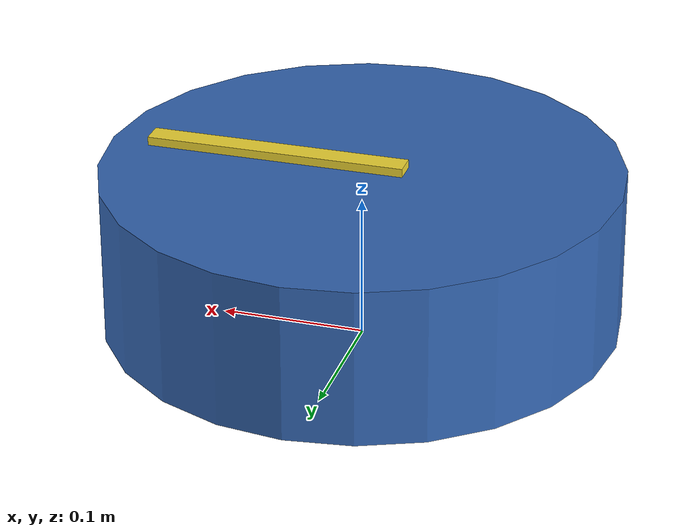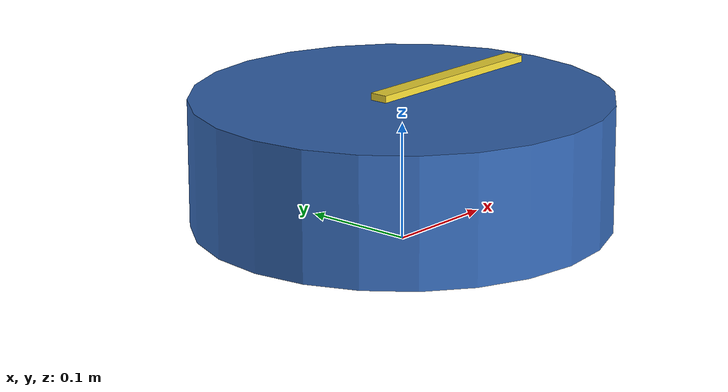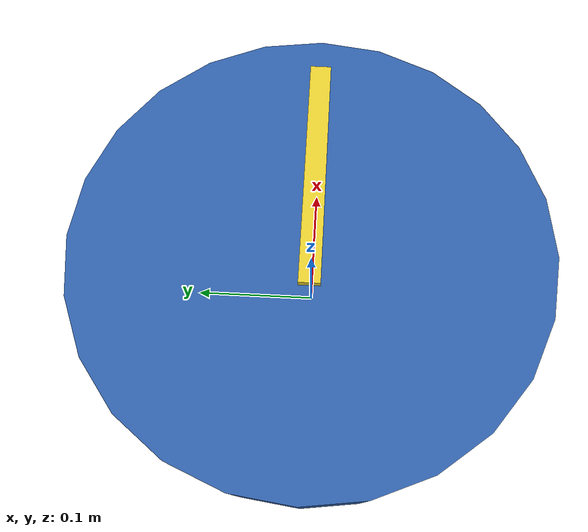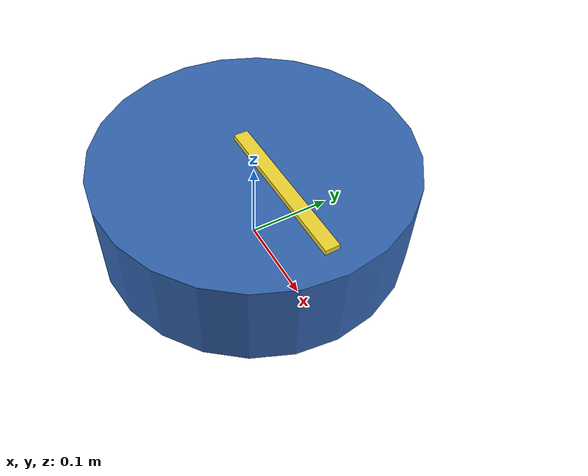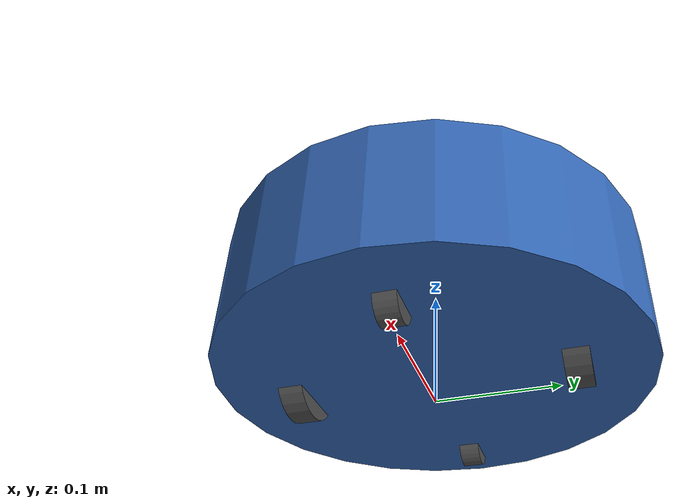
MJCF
<mujoco model="turtlebot2_kobuki">
  <compiler angle="radian"/>

  <asset>
    <material name="grey" rgba="0.3 0.3 0.3 1"/>
    <material name="body_blue" rgba="0.2 0.4 0.7 1"/>
    <material name="arrow_yellow" rgba="0.95 0.85 0.2 1"/>
  </asset>

  <default>
    <!-- Kobuki wheel motor -->
    <default class="wheel">
      <joint limited="false" frictionloss="0" armature="0.01"/>
      <!-- max wheel angular vel: 0.7 m/s / 0.035 m = 20 rad/s -->
      <!-- kv=1.0 + forcerange: ideal velocity controller with 1.0 Nm torque cap (matches Gazebo) -->
      <velocity kv="1.0" ctrlrange="-20 20" ctrllimited="true" forcerange="-1 1"/>
      <default class="wheel_left">
        <joint axis="0 0 1"/>
      </default>
      <default class="wheel_right">
        <joint axis="0 0 1"/>
      </default>
    </default>
  </default>

  <worldbody>
    <body name="base_link" pos="0 0 0.0102">
      <!-- URDF: mass=2.4, COM=(0.01, 0, 0), ixx=iyy=0.019995, izz=0.03675 -->
      <inertial pos="0.01 0 0" mass="6.1" diaginertia="0.05082 0.05082 0.09341"/>
      <joint type="free" name="base_joint"/>

      <!-- Visual body cylinder (matches collision shape, visual only) -->
      <geom name="body_cylinder" type="cylinder" size="0.178 0.05469"
        pos="0 0 0.05949" material="body_blue"
        contype="0" conaffinity="0" density="0" group="2"/>
      <!-- Collision cylinder: URDF r=0.178, length=0.10938 (half=0.05469), origin z=0.05949 -->
      <geom name="body_collision" type="cylinder" size="0.178 0.05469"
        pos="0 0 0.05949" group="3"/>

      <!-- Heading line on top of the cylinder for visual reference -->
      <geom name="heading_line" type="box" size="0.09 0.008 0.003"
        pos="0.06 0 0.118" material="arrow_yellow"
        contype="0" conaffinity="0" density="0" group="2"/>

      <!-- Front caster: URDF origin=(0.115, 0, 0.007), cylinder r=0.017 half-l=0.0088, rotated -pi/2 about X -->
      <geom name="caster_front" type="cylinder" size="0.017 0.0088"
        pos="0.115 0 0.007" quat="0.707107 -0.707107 0 0"
        material="grey" friction="0.0001 0.0001 0.0001"
        solref="0.02 1" solimp="0.95 0.99 0.001" condim="1"/>
      <!-- Back caster: URDF origin=(-0.135, 0, 0.009), same geometry -->
      <geom name="caster_back" type="cylinder" size="0.017 0.0088"
        pos="-0.135 0 0.009" quat="0.707107 -0.707107 0 0"
        material="grey" friction="0.0001 0.0001 0.0001"
        solref="0.02 1" solimp="0.95 0.99 0.001" condim="1"/>

      <!-- Left wheel: URDF origin=(0, 0.115, 0.025), rpy=(-pi/2, 0, 0), cylinder r=0.035 half-w=0.0103 -->
      <body name="wheel_left_link" pos="0 0.115 0.025" quat="0.707107 -0.707107 0 0">
        <inertial pos="0 0 0" mass="0.01" diaginertia="0.001 0.001 0.001"/>
        <joint name="wheel_left_joint" class="wheel_left"/>
        <geom type="cylinder" size="0.035 0.0103" material="grey"
          contype="0" conaffinity="0" density="0" group="2"/>
        <geom type="cylinder" size="0.035 0.0103" group="3" contype="1" conaffinity="1"/>
      </body>
      <!-- Right wheel: URDF origin=(0, -0.115, 0.025), same rotation -->
      <body name="wheel_right_link" pos="0 -0.115 0.025" quat="0.707107 -0.707107 0 0">
        <inertial pos="0 0 0" mass="0.01" diaginertia="0.001 0.001 0.001"/>
        <joint name="wheel_right_joint" class="wheel_right"/>
        <geom type="cylinder" size="0.035 0.0103" material="grey"
          contype="0" conaffinity="0" density="0" group="2"/>
        <geom type="cylinder" size="0.035 0.0103" group="3" contype="1" conaffinity="1"/>
      </body>
    </body>
  </worldbody>

  <actuator>
    <velocity class="wheel_left" name="left_wheel_velocity" joint="wheel_left_joint"/>
    <velocity class="wheel_right" name="right_wheel_velocity" joint="wheel_right_joint"/>
  </actuator>

  <contact>
    <exclude body1="base_link" body2="wheel_left_link"/>
    <exclude body1="base_link" body2="wheel_right_link"/>
  </contact>
</mujoco>
